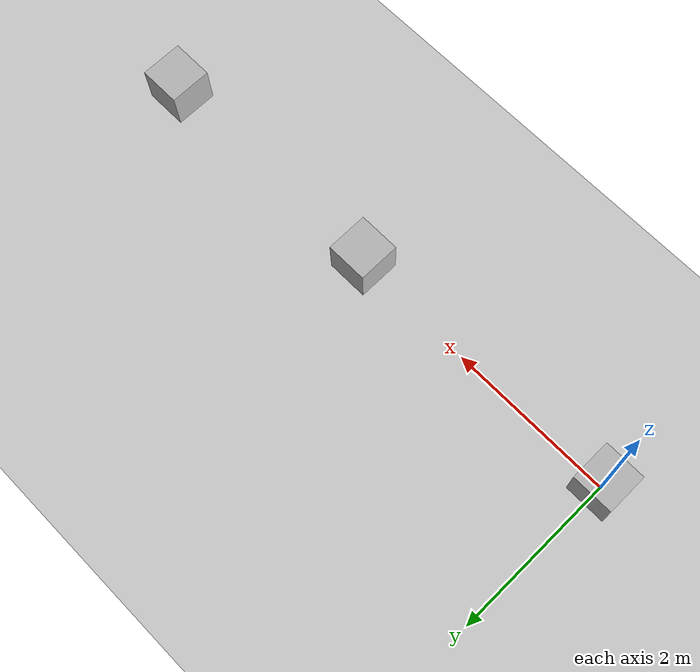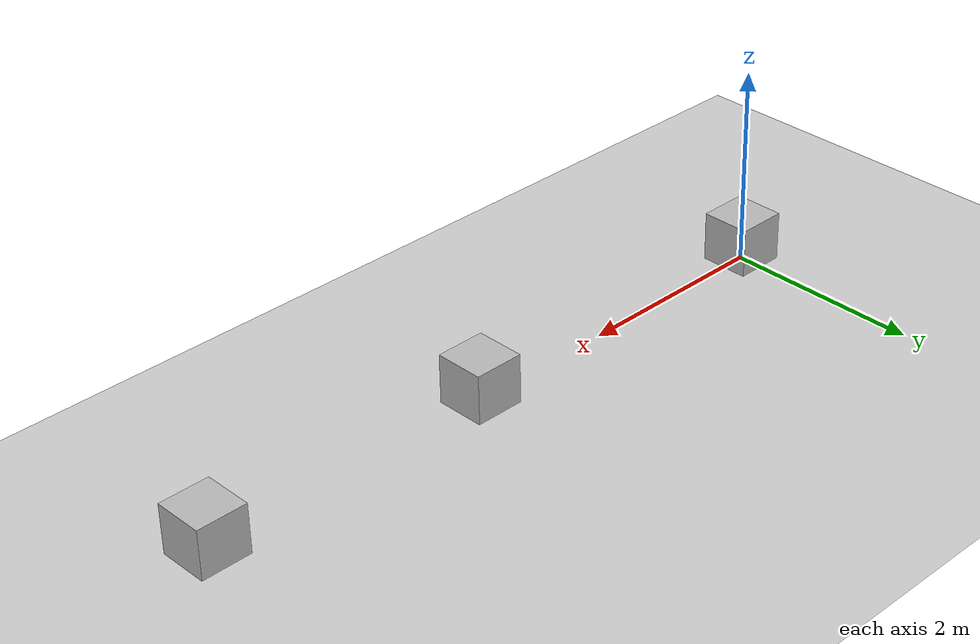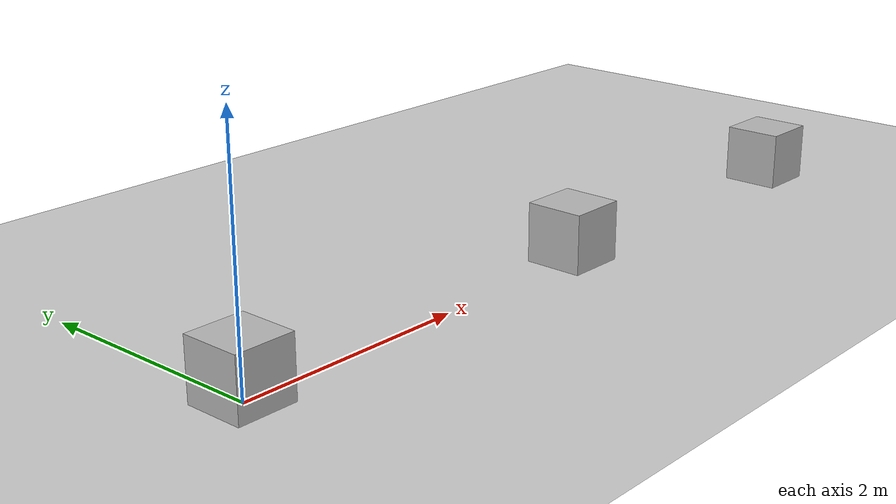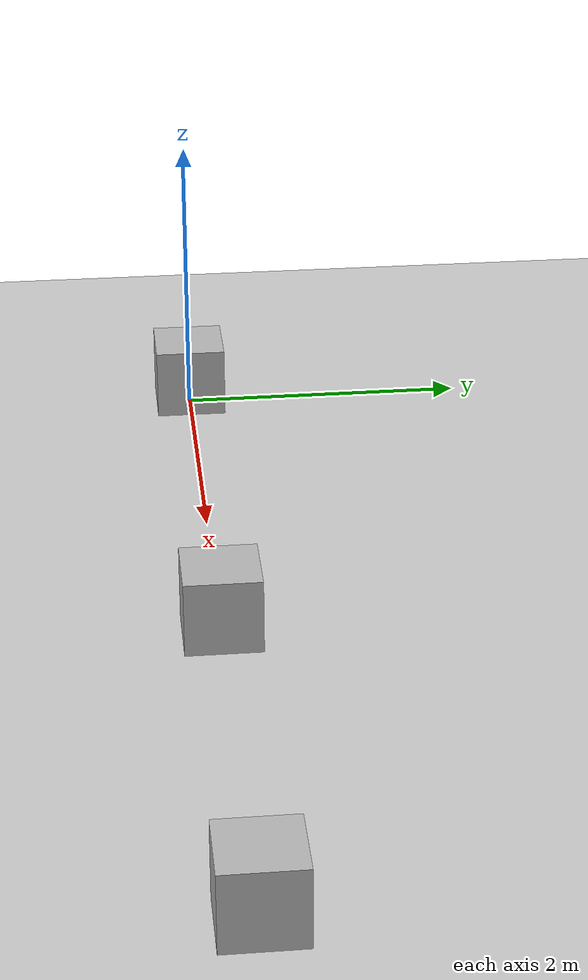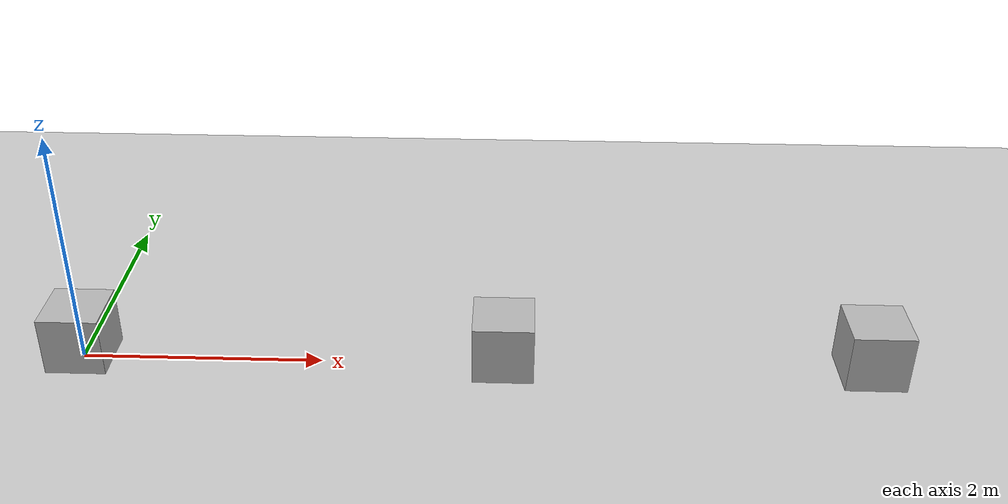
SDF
<?xml version="1.0" ?>
<sdf version="1.5">
  <world name="default">
    <!-- A global light source -->
    <include>
      <uri>model://sun</uri>
    </include>
    <!-- A ground plane -->
    <include>
      <uri>model://ground_plane</uri>
    </include>

    <!-- A testing model that includes the Velodyne sensor model -->
    <model name="object_link">
		<link name="object_link">
		<pose>0 0 0.25 0 0 0</pose>
		<collision name="object_link_collision">
			<pose>0 0 0 0 0 0</pose>
			<geometry>
			<box>
				<size>0.5 0.5 0.5</size>
			</box>
			</geometry>
		</collision>
		<visual name="object_link_visual">
		<pose>0 0 0 0 0 0</pose>
			<geometry>
			<box>
				<size>0.5 0.5 0.5</size>
			</box>
			</geometry>
		</visual>
		</link>

      <!-- Attach the plugin to this model -->
    </model>
	<model name="object_link2">
	<link name="object_link2">
	<pose>3.5 0 0.25 0 0 0</pose>
	<collision name="object_link_collision2">
		<pose>0 0 0 0 0</pose>
		<geometry>
		<box>
			<size>0.5 0.5 0.5</size>
		</box>
		</geometry>
	</collision>
	<visual name="object_link_visual2">
	<pose>0 0 0 0 0 0</pose>
		<geometry>
		<box>
			<size>0.5 0.5 0.5</size>
		</box>
		</geometry>
	</visual>
	</link>

	<!-- Attach the plugin to this model -->
    </model>
	<model name="object_link3">
	<link name="object_link3">
	<pose>6.5 0 0.25 0 0 0</pose>
	<collision name="object_link_collision3">
		<pose>0 0 0 0 0</pose>
		<geometry>
		<box>
			<size>0.5 0.5 0.5</size>
		</box>
		</geometry>
	</collision>
	<visual name="object_link_visual3">
	<pose>0 0 0 0 0 0</pose>
		<geometry>
		<box>
			<size>0.5 0.5 0.5</size>
		</box>
		</geometry>
	</visual>
	</link>
	<link name="world"/>

	<!-- Attach the plugin to this model -->
    </model>

	<plugin name="velodyne_control" filename="libfullbot_plugin.so"/>
  </world>
</sdf>
